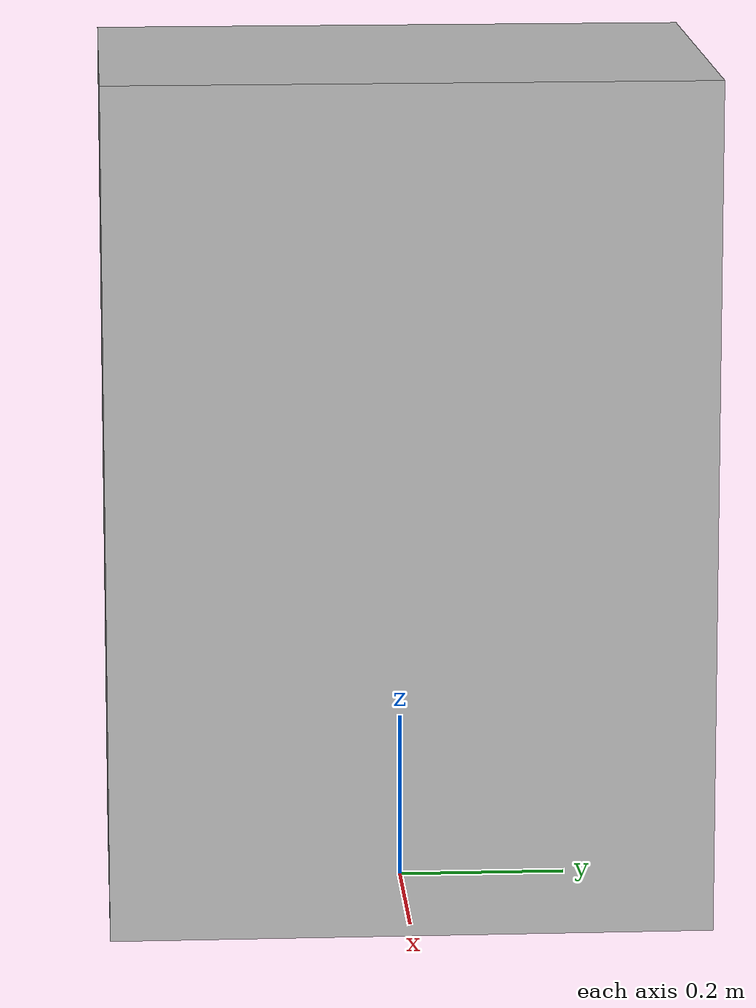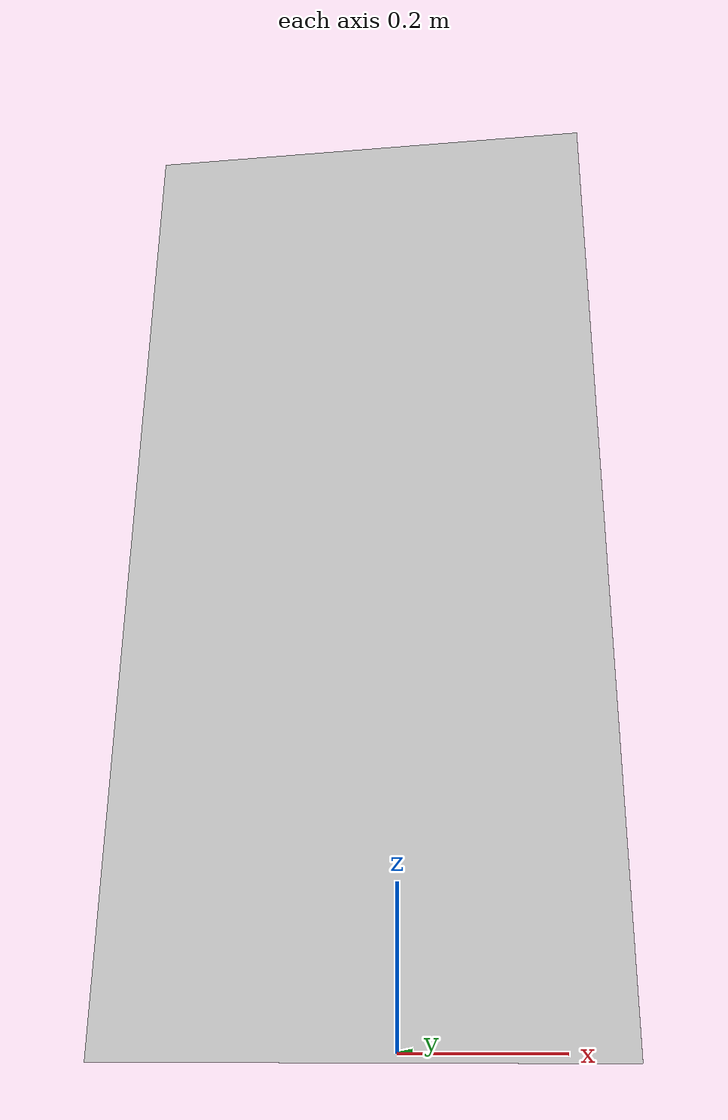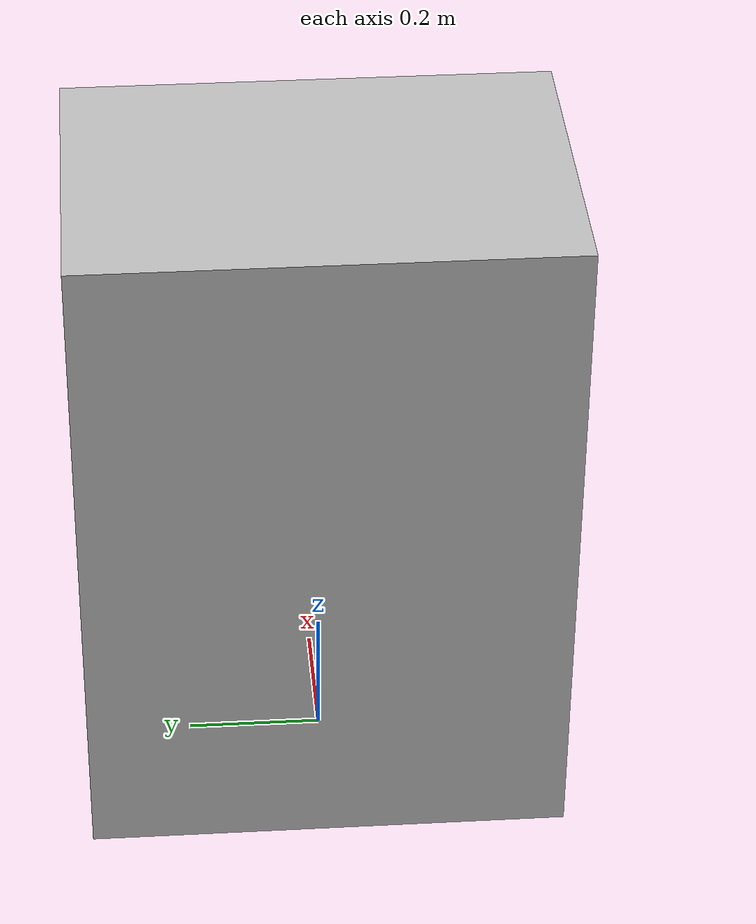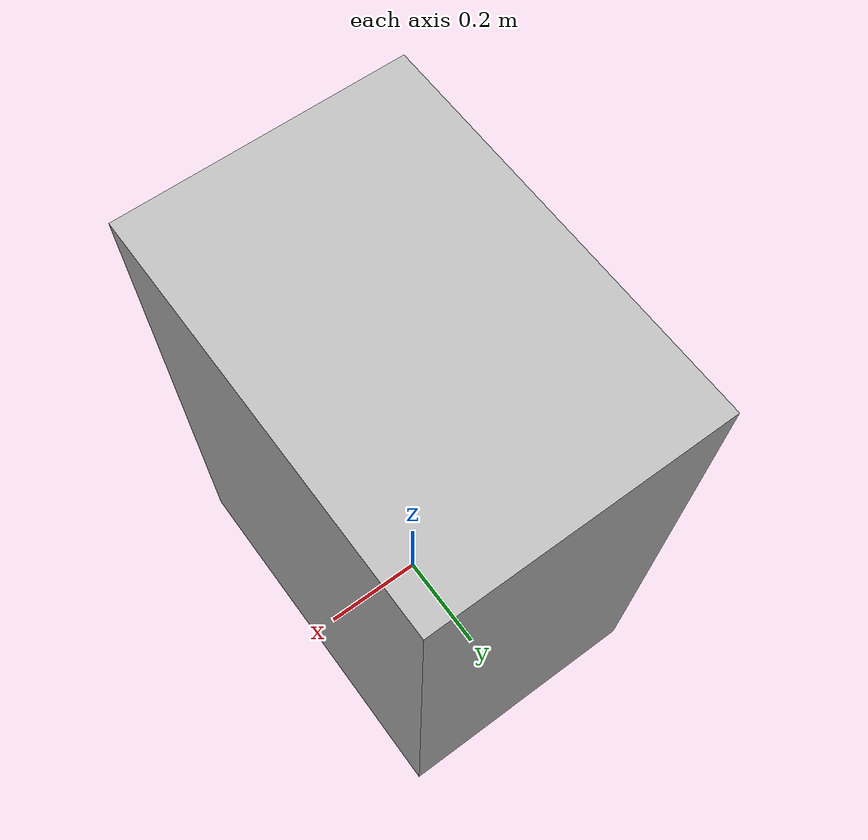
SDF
<?xml version="1.0"?>
<sdf version="1.6">
  <model name="floor">
    <link name="1_link">
      <collision name="1_col">
        <geometry>
          <box>
            <size>0.5 0.6 1.2</size>
          </box>
        </geometry>
      </collision>
      <visual name="1_vis">
        <geometry>
          <box>
            <size>0.49 0.71 1.01</size>
          </box>
        </geometry>
      </visual>
      <pose>0 0 0.505 0 0 0</pose>
    </link>
    <link name="on_top_of">
      <virtual_volume name="on_top_of_vv">
        <geometry>
          <box>
            <size>0.49 0.71 0.4</size>
          </box>
        </geometry>
        <pose>0.0 0.0 1.25 0 0 0</pose>
      </virtual_volume>
    </link>
    <static>true</static>
  </model>
</sdf>
